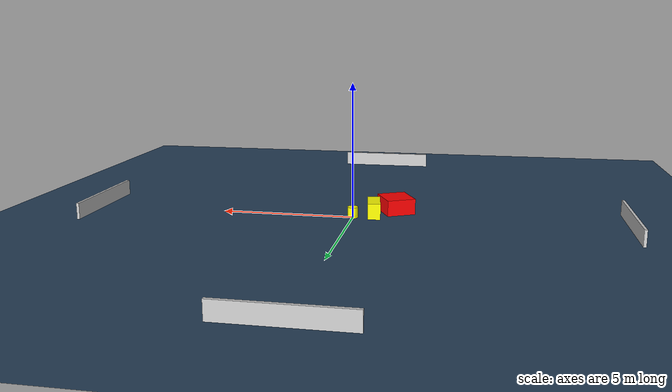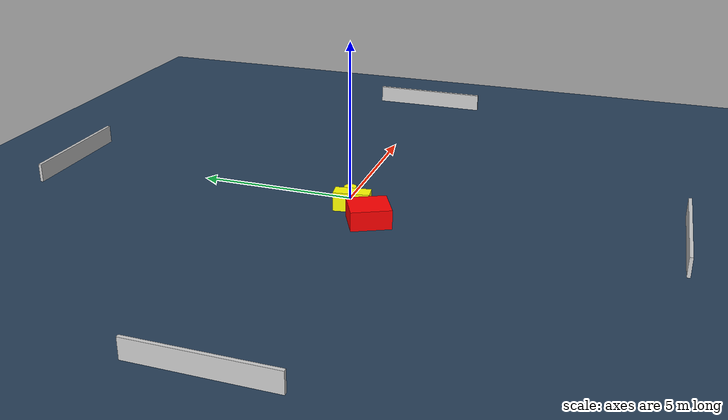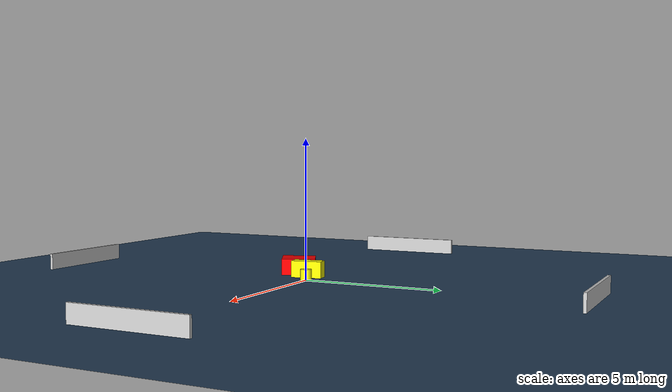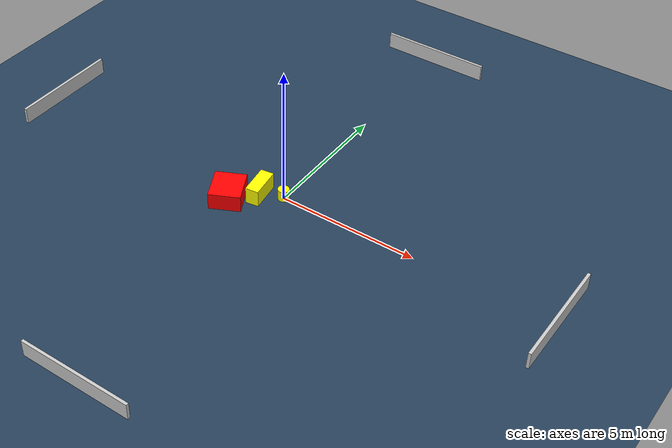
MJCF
<?xml version="1.0" ?>
<mujoco model="generated_environment">
  <option timestep="0.01" integrator="RK4" cone="elliptic"/>
  <default>
    <geom density="1"/>
  </default>
  <asset>
    <texture builtin="gradient" height="3072" name="skybox" rgb1="0.3 0.5 0.7" rgb2="0 0 0" type="skybox" width="512"/>
    <texture builtin="checker" height="300" name="groundplane" rgb1="0.2 0.3 0.4" rgb2="0.1 0.2 0.3" type="2d" width="300"/>
    <material name="groundplane" reflectance="0.2" texrepeat="5 5" texture="groundplane"/>
  </asset>
  <worldbody>
    <light dir="0 0 -1" directional="true" pos="0 0 1.5"/>
    <geom condim="3" friction="0.5 0.005 0.001" material="groundplane" name="floor" pos="0 0 0" size="0 0 0.05" type="plane"/>
    <body name="walls">
      <geom name="wall_1" condim="4" pos="-10.0 0.0 0.3" rgba="0.800000011920929 0.800000011920929 0.800000011920929 1.0" size="0.05 2.0 0.3" type="box"/>
      <geom name="wall_2" condim="4" pos="10.0 0.0 0.3" rgba="0.800000011920929 0.800000011920929 0.800000011920929 1.0" size="0.05 2.0 0.3" type="box"/>
      <geom name="wall_3" condim="4" pos="0.0 -10.0 0.3" rgba="0.800000011920929 0.800000011920929 0.800000011920929 1.0" size="2.0 0.05 0.3" type="box"/>
      <geom name="wall_4" condim="4" pos="0.0 10.0 0.3" rgba="0.800000011920929 0.800000011920929 0.800000011920929 1.0" size="2.0 0.05 0.3" type="box"/>
    </body>
    <body name="robot">
      <joint name="joint_x" type="slide" pos="0 0 0" axis="1 0 0"/>
      <joint name="joint_y" type="slide" pos="0 0 0" axis="0 1 0"/>
      <geom name="robot" type="cylinder" pos="0.0 0.0 0.2" size="0.2 0.2 0.0" mass="5.0" friction="1.0 0.005 0.0001" condim="4" rgba="1.0 1.0 0.0 1.0"/>
    </body>
    <body name="obstacle_1_movable">
      <geom name="obstacle_1_movable" condim="4" pos="-0.7556281749134061 -0.3176851092911194 0.3" euler="0 0 8.35082595178747" friction="0.0 0.005 0.001" rgba="1.0 1.0 0.0 1.0" size="0.2354214717242037 0.5582402021483375 0.3" type="box" mass="0.1"/>
      <joint type="free"/>
    </body>
    <body name="obstacle_2_static">
      <geom name="obstacle_2_static" condim="4" pos="-1.5078049412591497 -1.083160518172471 0.3" euler="0 0 26.261757883177353" friction="0.0 0.005 0.001" rgba="1.0 0.0 0.0 1.0" size="0.5503976646955049 0.6139579477230506 0.3" type="box"/>
    </body>
  </worldbody>
  <actuator>
    <motor name="actuator_x" joint="joint_x" gear="1" ctrlrange="-1 1"/>
    <motor name="actuator_y" joint="joint_y" gear="1" ctrlrange="-1 1"/>
  </actuator>
</mujoco>
